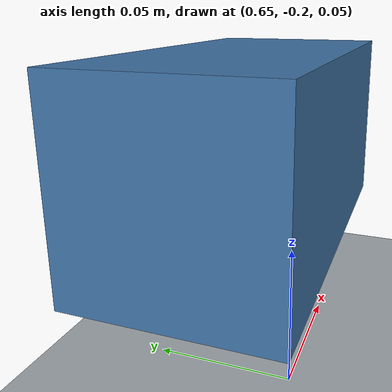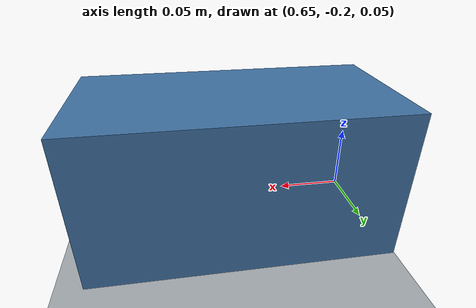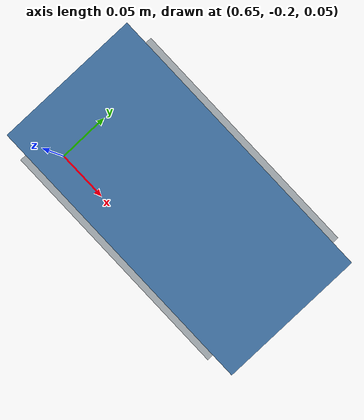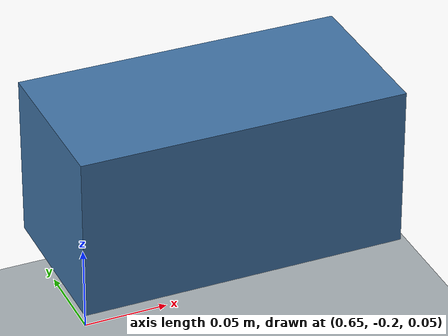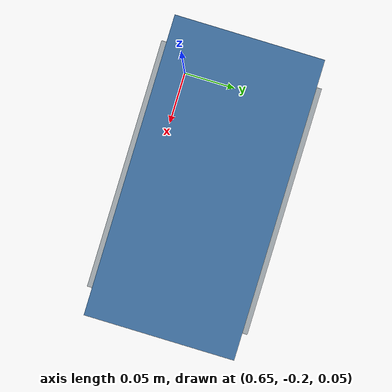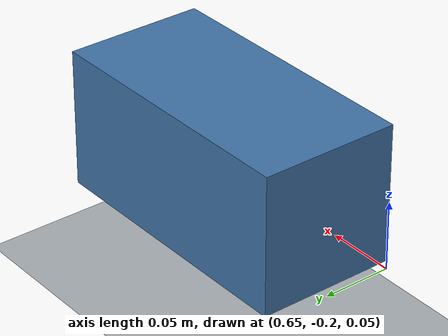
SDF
<?xml version="1.0"?>
<sdf version="1.6">
  <world name="ft_contact_test">
    <physics name="1ms" type="ignored">
      <max_step_size>0.001</max_step_size>
      <real_time_factor>1.0</real_time_factor>
    </physics>

    <plugin
      filename="ignition-gazebo-physics-system"
      name="gz::sim::systems::Physics"/>
    <plugin
      filename="ignition-gazebo-user-commands-system"
      name="gz::sim::systems::UserCommands"/>
    <plugin
      filename="ignition-gazebo-scene-broadcaster-system"
      name="gz::sim::systems::SceneBroadcaster"/>
    <plugin
      filename="ignition-gazebo-contact-system"
      name="gz::sim::systems::Contact"/>
    <plugin
      filename="ignition-gazebo-forcetorque-system"
      name="ignition::gazebo::systems::ForceTorque"/>
    <!-- 实验二使用该系统向按摩头施加可重复的已知外力。 -->
    <plugin
      filename="ignition-gazebo-apply-link-wrench-system"
      name="gz::sim::systems::ApplyLinkWrench"/>

    <light type="directional" name="sun">
      <cast_shadows>true</cast_shadows>
      <pose>0 0 10 0 0 0</pose>
      <diffuse>0.8 0.8 0.8 1</diffuse>
      <specular>0.2 0.2 0.2 1</specular>
      <direction>-0.5 0.1 -0.9</direction>
    </light>

    <model name="ground_plane">
      <static>true</static>
      <link name="ground_link">
        <collision name="ground_collision">
          <geometry>
            <plane>
              <normal>0 0 1</normal>
              <size>100 100</size>
            </plane>
          </geometry>
        </collision>
        <visual name="ground_visual">
          <geometry>
            <plane>
              <normal>0 0 1</normal>
              <size>100 100</size>
            </plane>
          </geometry>
          <material>
            <ambient>0.65 0.68 0.70 1</ambient>
            <diffuse>0.65 0.68 0.70 1</diffuse>
          </material>
        </visual>
      </link>
    </model>

    <!--
      接触块位于抬高后的工作位附近，机械臂零位时两者在 Z 方向分离。
      pad_link 只允许沿世界 Y 方向移动，并由弹簧和阻尼复位。这样机械臂
      主动低速接触时能获得可控柔度，不再依赖刚体穿透制造冲击力。
    -->
    <model name="contact_pad">
      <static>false</static>
      <allow_auto_disable>false</allow_auto_disable>
      <pose>0.75 -0.15 0.106382 0 0 0</pose>
      <link name="pad_link">
        <gravity>false</gravity>
        <inertial>
          <mass>2.0</mass>
          <inertia>
            <ixx>0.003333</ixx>
            <iyy>0.008333</iyy>
            <izz>0.008333</izz>
          </inertia>
        </inertial>
        <collision name="pad_collision">
          <geometry>
            <box>
              <size>0.20 0.10 0.10</size>
            </box>
          </geometry>
          <surface>
            <friction>
              <ode>
                <mu>0.5</mu>
                <mu2>0.5</mu2>
              </ode>
            </friction>
          </surface>
        </collision>
        <visual name="pad_visual">
          <geometry>
            <box>
              <size>0.20 0.10 0.10</size>
            </box>
          </geometry>
          <material>
            <ambient>0.25 0.45 0.65 1</ambient>
            <diffuse>0.25 0.45 0.65 1</diffuse>
          </material>
        </visual>
      </link>
      <joint name="pad_compliance_joint" type="prismatic">
        <parent>world</parent>
        <child>pad_link</child>
        <axis>
          <xyz>0 1 0</xyz>
          <limit>
            <lower>-0.03</lower>
            <upper>0.005</upper>
            <effort>1000.0</effort>
            <velocity>0.10</velocity>
          </limit>
          <dynamics>
            <damping>20.0</damping>
            <spring_reference>0.0</spring_reference>
            <spring_stiffness>500.0</spring_stiffness>
          </dynamics>
        </axis>
      </joint>
    </model>

  </world>
</sdf>
